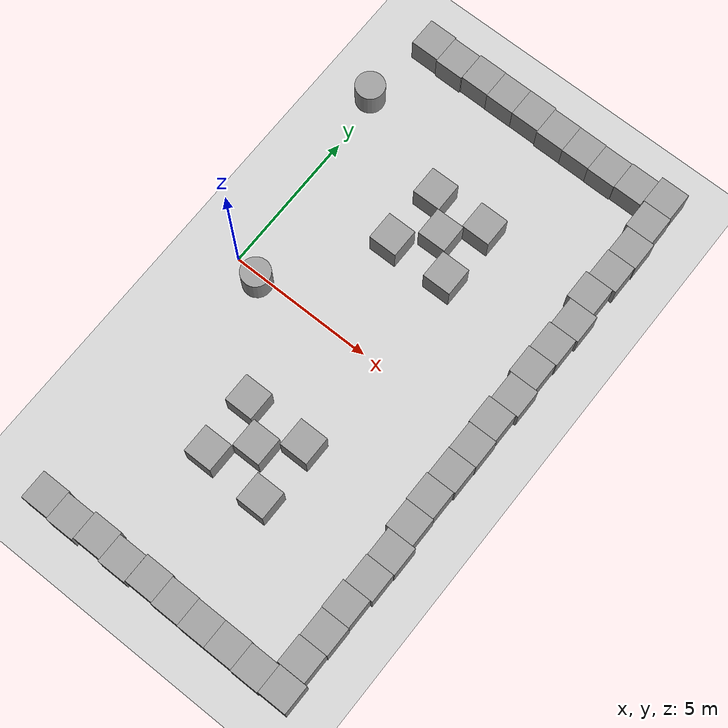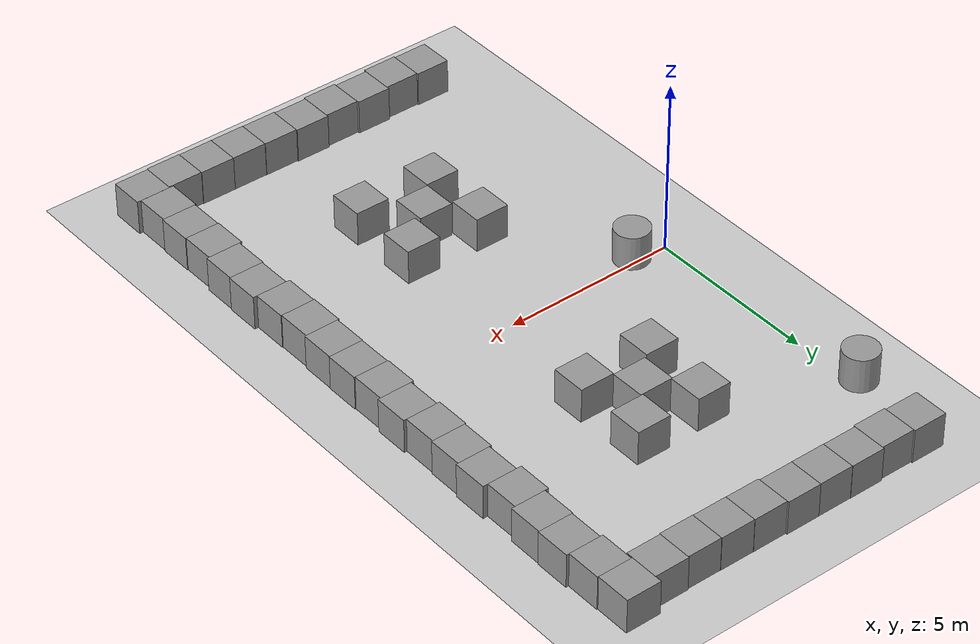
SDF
<sdf version="1.7">
 <world name="default">
  <model name="ground_plane">
   <static>1</static>
   <link name="link">
    <collision name="collision">
     <geometry><plane><normal>0 0 1</normal><size>100 100</size></plane></geometry>
     <surface>
      <contact><collide_bitmask>65535</collide_bitmask></contact>
      <friction><ode><mu>100</mu><mu2>50</mu2></ode></friction>
     </surface>
    </collision>
    <visual name="visual">
     <cast_shadows>0</cast_shadows>
     <geometry><plane><normal>0 0 1</normal><size>100 100</size></plane></geometry>
     <material>
      <script><uri>file://media/materials/scripts/gazebo.material</uri><name>Gazebo/Grey</name></script>
     </material>
    </visual>
   </link>
  </model>
  <model name="unit_box_17">
   <pose>0.392104 9.43689 0.499995 -1e-05 -0 -0.002647</pose>
   <link name="link">
    <inertial>
     <mass>1</mass>
     <inertia>
      <ixx>0.166667</ixx>
      <ixy>0</ixy>
      <ixz>0</ixz>
      <iyy>0.166667</iyy>
      <iyz>0</iyz>
      <izz>0.166667</izz>
     </inertia>
    </inertial>
    <collision name="collision"><geometry><box><size>1 1 1</size></box></geometry></collision>
    <visual name="visual">
     <geometry><box><size>1 1 1</size></box></geometry>
     <material>
      <script><name>Gazebo/Grey</name><uri>file://media/materials/scripts/gazebo.material</uri></script>
     </material>
    </visual>
   </link>
  </model>
  <model name="unit_box_18">
   <pose>1.39199 9.39251 0.499995 1e-05 -0 -0.00264</pose>
   <link name="link">
    <inertial>
     <mass>1</mass>
     <inertia>
      <ixx>0.166667</ixx>
      <ixy>0</ixy>
      <ixz>0</ixz>
      <iyy>0.166667</iyy>
      <iyz>0</iyz>
      <izz>0.166667</izz>
     </inertia>
    </inertial>
    <collision name="collision"><geometry><box><size>1 1 1</size></box></geometry></collision>
    <visual name="visual">
     <geometry><box><size>1 1 1</size></box></geometry>
     <material>
      <script><name>Gazebo/Grey</name><uri>file://media/materials/scripts/gazebo.material</uri></script>
     </material>
    </visual>
   </link>
  </model>
  <model name="unit_box_19">
   <pose>2.39259 9.43873 0.499995 -1e-05 -0 -0.001596</pose>
   <link name="link">
    <inertial>
     <mass>1</mass>
     <inertia>
      <ixx>0.166667</ixx>
      <ixy>0</ixy>
      <ixz>0</ixz>
      <iyy>0.166667</iyy>
      <iyz>0</iyz>
      <izz>0.166667</izz>
     </inertia>
    </inertial>
    <collision name="collision"><geometry><box><size>1 1 1</size></box></geometry></collision>
    <visual name="visual">
     <geometry><box><size>1 1 1</size></box></geometry>
     <material>
      <script><name>Gazebo/Grey</name><uri>file://media/materials/scripts/gazebo.material</uri></script>
     </material>
    </visual>
   </link>
  </model>
  <model name="unit_box_20">
   <pose>3.3927 9.42968 0.499995 -1e-05 -0 -0.001365</pose>
   <link name="link">
    <inertial>
     <mass>1</mass>
     <inertia>
      <ixx>0.166667</ixx>
      <ixy>0</ixy>
      <ixz>0</ixz>
      <iyy>0.166667</iyy>
      <iyz>0</iyz>
      <izz>0.166667</izz>
     </inertia>
    </inertial>
    <collision name="collision"><geometry><box><size>1 1 1</size></box></geometry></collision>
    <visual name="visual">
     <geometry><box><size>1 1 1</size></box></geometry>
     <material>
      <script><name>Gazebo/Grey</name><uri>file://media/materials/scripts/gazebo.material</uri></script>
     </material>
    </visual>
   </link>
  </model>
  <model name="unit_box_21">
   <pose>4.39287 9.43126 0.499995 1e-05 -0 -0.001029</pose>
   <link name="link">
    <inertial>
     <mass>1</mass>
     <inertia>
      <ixx>0.166667</ixx>
      <ixy>0</ixy>
      <ixz>0</ixz>
      <iyy>0.166667</iyy>
      <iyz>0</iyz>
      <izz>0.166667</izz>
     </inertia>
    </inertial>
    <collision name="collision"><geometry><box><size>1 1 1</size></box></geometry></collision>
    <visual name="visual">
     <geometry><box><size>1 1 1</size></box></geometry>
     <material>
      <script><name>Gazebo/Grey</name><uri>file://media/materials/scripts/gazebo.material</uri></script>
     </material>
    </visual>
   </link>
  </model>
  <model name="unit_box_22">
   <pose>5.3933 9.3867 0.5 0 0 -7.4e-05</pose>
   <link name="link">
    <inertial>
     <mass>1</mass>
     <inertia>
      <ixx>0.166667</ixx>
      <ixy>0</ixy>
      <ixz>0</ixz>
      <iyy>0.166667</iyy>
      <iyz>0</iyz>
      <izz>0.166667</izz>
     </inertia>
    </inertial>
    <collision name="collision"><geometry><box><size>1 1 1</size></box></geometry></collision>
    <visual name="visual">
     <geometry><box><size>1 1 1</size></box></geometry>
     <material>
      <script><name>Gazebo/Grey</name><uri>file://media/materials/scripts/gazebo.material</uri></script>
     </material>
    </visual>
   </link>
  </model>
  <model name="unit_box_23">
   <pose>6.39336 9.37988 0.499995 1e-05 -0 3.2e-05</pose>
   <link name="link">
    <inertial>
     <mass>1</mass>
     <inertia>
      <ixx>0.166667</ixx>
      <ixy>0</ixy>
      <ixz>0</ixz>
      <iyy>0.166667</iyy>
      <iyz>0</iyz>
      <izz>0.166667</izz>
     </inertia>
    </inertial>
    <collision name="collision"><geometry><box><size>1 1 1</size></box></geometry></collision>
    <visual name="visual">
     <geometry><box><size>1 1 1</size></box></geometry>
     <material>
      <script><name>Gazebo/Grey</name><uri>file://media/materials/scripts/gazebo.material</uri></script>
     </material>
    </visual>
   </link>
  </model>
  <model name="unit_box_24">
   <pose>7.39336 9.36883 0.499995 0 -9e-06 3.5e-05</pose>
   <link name="link">
    <inertial>
     <mass>1</mass>
     <inertia>
      <ixx>0.166667</ixx>
      <ixy>0</ixy>
      <ixz>0</ixz>
      <iyy>0.166667</iyy>
      <iyz>0</iyz>
      <izz>0.166667</izz>
     </inertia>
    </inertial>
    <collision name="collision"><geometry><box><size>1 1 1</size></box></geometry></collision>
    <visual name="visual">
     <geometry><box><size>1 1 1</size></box></geometry>
     <material>
      <script><name>Gazebo/Grey</name><uri>file://media/materials/scripts/gazebo.material</uri></script>
     </material>
    </visual>
   </link>
  </model>
  <model name="unit_box_25">
   <pose>8.39341 9.39466 0.5 0 -0 0.000138</pose>
   <link name="link">
    <inertial>
     <mass>1</mass>
     <inertia>
      <ixx>0.166667</ixx>
      <ixy>0</ixy>
      <ixz>0</ixz>
      <iyy>0.166667</iyy>
      <iyz>0</iyz>
      <izz>0.166667</izz>
     </inertia>
    </inertial>
    <collision name="collision"><geometry><box><size>1 1 1</size></box></geometry></collision>
    <visual name="visual">
     <geometry><box><size>1 1 1</size></box></geometry>
     <material>
      <script><name>Gazebo/Grey</name><uri>file://media/materials/scripts/gazebo.material</uri></script>
     </material>
    </visual>
   </link>
  </model>
  <model name="unit_box_26">
   <pose>9.39342 9.59434 0.5 0 -0 0.000231</pose>
   <link name="link">
    <inertial>
     <mass>1</mass>
     <inertia>
      <ixx>0.166667</ixx>
      <ixy>0</ixy>
      <ixz>0</ixz>
      <iyy>0.166667</iyy>
      <iyz>0</iyz>
      <izz>0.166667</izz>
     </inertia>
    </inertial>
    <collision name="collision"><geometry><box><size>1 1 1</size></box></geometry></collision>
    <visual name="visual">
     <geometry><box><size>1 1 1</size></box></geometry>
     <material>
      <script><name>Gazebo/Grey</name><uri>file://media/materials/scripts/gazebo.material</uri></script>
     </material>
    </visual>
   </link>
  </model>
  <model name="unit_box_27">
   <pose>9.41864 8.59421 0.499995 0 -1e-05 0.000412</pose>
   <link name="link">
    <inertial>
     <mass>1</mass>
     <inertia>
      <ixx>0.166667</ixx>
      <ixy>0</ixy>
      <ixz>0</ixz>
      <iyy>0.166667</iyy>
      <iyz>0</iyz>
      <izz>0.166667</izz>
     </inertia>
    </inertial>
    <collision name="collision"><geometry><box><size>1 1 1</size></box></geometry></collision>
    <visual name="visual">
     <geometry><box><size>1 1 1</size></box></geometry>
     <material>
      <script><name>Gazebo/Grey</name><uri>file://media/materials/scripts/gazebo.material</uri></script>
     </material>
    </visual>
   </link>
  </model>
  <model name="unit_box_28">
   <pose>9.4967 7.59422 0.499995 0 -1e-05 0.000448</pose>
   <link name="link">
    <inertial>
     <mass>1</mass>
     <inertia>
      <ixx>0.166667</ixx>
      <ixy>0</ixy>
      <ixz>0</ixz>
      <iyy>0.166667</iyy>
      <iyz>0</iyz>
      <izz>0.166667</izz>
     </inertia>
    </inertial>
    <collision name="collision"><geometry><box><size>1 1 1</size></box></geometry></collision>
    <visual name="visual">
     <geometry><box><size>1 1 1</size></box></geometry>
     <material>
      <script><name>Gazebo/Grey</name><uri>file://media/materials/scripts/gazebo.material</uri></script>
     </material>
    </visual>
   </link>
  </model>
  <model name="unit_box_29">
   <pose>9.47494 6.5942 0.499995 0 1e-05 0.000465</pose>
   <link name="link">
    <inertial>
     <mass>1</mass>
     <inertia>
      <ixx>0.166667</ixx>
      <ixy>0</ixy>
      <ixz>0</ixz>
      <iyy>0.166667</iyy>
      <iyz>0</iyz>
      <izz>0.166667</izz>
     </inertia>
    </inertial>
    <collision name="collision"><geometry><box><size>1 1 1</size></box></geometry></collision>
    <visual name="visual">
     <geometry><box><size>1 1 1</size></box></geometry>
     <material>
      <script><name>Gazebo/Grey</name><uri>file://media/materials/scripts/gazebo.material</uri></script>
     </material>
    </visual>
   </link>
  </model>
  <model name="unit_box_30">
   <pose>9.3665 5.5939 0.499995 0 1e-05 0.000959</pose>
   <link name="link">
    <inertial>
     <mass>1</mass>
     <inertia>
      <ixx>0.166667</ixx>
      <ixy>0</ixy>
      <ixz>0</ixz>
      <iyy>0.166667</iyy>
      <iyz>0</iyz>
      <izz>0.166667</izz>
     </inertia>
    </inertial>
    <collision name="collision"><geometry><box><size>1 1 1</size></box></geometry></collision>
    <visual name="visual">
     <geometry><box><size>1 1 1</size></box></geometry>
     <material>
      <script><name>Gazebo/Grey</name><uri>file://media/materials/scripts/gazebo.material</uri></script>
     </material>
    </visual>
   </link>
  </model>
  <model name="unit_box_31">
   <pose>9.50773 4.59387 0.5 0 -0 0.001405</pose>
   <link name="link">
    <inertial>
     <mass>1</mass>
     <inertia>
      <ixx>0.166667</ixx>
      <ixy>0</ixy>
      <ixz>0</ixz>
      <iyy>0.166667</iyy>
      <iyz>0</iyz>
      <izz>0.166667</izz>
     </inertia>
    </inertial>
    <collision name="collision"><geometry><box><size>1 1 1</size></box></geometry></collision>
    <visual name="visual">
     <geometry><box><size>1 1 1</size></box></geometry>
     <material>
      <script><name>Gazebo/Grey</name><uri>file://media/materials/scripts/gazebo.material</uri></script>
     </material>
    </visual>
   </link>
  </model>
  <model name="unit_box_32">
   <pose>9.44971 3.59376 0.5 0 -0 0.001459</pose>
   <link name="link">
    <inertial>
     <mass>1</mass>
     <inertia>
      <ixx>0.166667</ixx>
      <ixy>0</ixy>
      <ixz>0</ixz>
      <iyy>0.166667</iyy>
      <iyz>0</iyz>
      <izz>0.166667</izz>
     </inertia>
    </inertial>
    <collision name="collision"><geometry><box><size>1 1 1</size></box></geometry></collision>
    <visual name="visual">
     <geometry><box><size>1 1 1</size></box></geometry>
     <material>
      <script><name>Gazebo/Grey</name><uri>file://media/materials/scripts/gazebo.material</uri></script>
     </material>
    </visual>
   </link>
  </model>
  <model name="unit_box_33">
   <pose>9.41921 2.59371 0.5 0 -0 0.001467</pose>
   <link name="link">
    <inertial>
     <mass>1</mass>
     <inertia>
      <ixx>0.166667</ixx>
      <ixy>0</ixy>
      <ixz>0</ixz>
      <iyy>0.166667</iyy>
      <iyz>0</iyz>
      <izz>0.166667</izz>
     </inertia>
    </inertial>
    <collision name="collision"><geometry><box><size>1 1 1</size></box></geometry></collision>
    <visual name="visual">
     <geometry><box><size>1 1 1</size></box></geometry>
     <material>
      <script><name>Gazebo/Grey</name><uri>file://media/materials/scripts/gazebo.material</uri></script>
     </material>
    </visual>
   </link>
  </model>
  <model name="unit_box_34">
   <pose>9.5007 1.59379 0.499995 0 1e-05 0.001543</pose>
   <link name="link">
    <inertial>
     <mass>1</mass>
     <inertia>
      <ixx>0.166667</ixx>
      <ixy>0</ixy>
      <ixz>0</ixz>
      <iyy>0.166667</iyy>
      <iyz>0</iyz>
      <izz>0.166667</izz>
     </inertia>
    </inertial>
    <collision name="collision"><geometry><box><size>1 1 1</size></box></geometry></collision>
    <visual name="visual">
     <geometry><box><size>1 1 1</size></box></geometry>
     <material>
      <script><name>Gazebo/Grey</name><uri>file://media/materials/scripts/gazebo.material</uri></script>
     </material>
    </visual>
   </link>
  </model>
  <model name="unit_box_35">
   <pose>9.42391 0.593644 0.499995 -1e-05 0 0.001598</pose>
   <link name="link">
    <inertial>
     <mass>1</mass>
     <inertia>
      <ixx>0.166667</ixx>
      <ixy>0</ixy>
      <ixz>0</ixz>
      <iyy>0.166667</iyy>
      <iyz>0</iyz>
      <izz>0.166667</izz>
     </inertia>
    </inertial>
    <collision name="collision"><geometry><box><size>1 1 1</size></box></geometry></collision>
    <visual name="visual">
     <geometry><box><size>1 1 1</size></box></geometry>
     <material>
      <script><name>Gazebo/Grey</name><uri>file://media/materials/scripts/gazebo.material</uri></script>
     </material>
    </visual>
   </link>
  </model>
  <model name="unit_box_36">
   <pose>9.45116 -0.406327 0.5 0 -0 0.001604</pose>
   <link name="link">
    <inertial>
     <mass>1</mass>
     <inertia>
      <ixx>0.166667</ixx>
      <ixy>0</ixy>
      <ixz>0</ixz>
      <iyy>0.166667</iyy>
      <iyz>0</iyz>
      <izz>0.166667</izz>
     </inertia>
    </inertial>
    <collision name="collision"><geometry><box><size>1 1 1</size></box></geometry></collision>
    <visual name="visual">
     <geometry><box><size>1 1 1</size></box></geometry>
     <material>
      <script><name>Gazebo/Grey</name><uri>file://media/materials/scripts/gazebo.material</uri></script>
     </material>
    </visual>
   </link>
  </model>
  <model name="unit_box_37">
   <pose>9.43995 -1.40635 0.499995 0 1e-05 0.00161</pose>
   <link name="link">
    <inertial>
     <mass>1</mass>
     <inertia>
      <ixx>0.166667</ixx>
      <ixy>0</ixy>
      <ixz>0</ixz>
      <iyy>0.166667</iyy>
      <iyz>0</iyz>
      <izz>0.166667</izz>
     </inertia>
    </inertial>
    <collision name="collision"><geometry><box><size>1 1 1</size></box></geometry></collision>
    <visual name="visual">
     <geometry><box><size>1 1 1</size></box></geometry>
     <material>
      <script><name>Gazebo/Grey</name><uri>file://media/materials/scripts/gazebo.material</uri></script>
     </material>
    </visual>
   </link>
  </model>
  <model name="unit_box_38">
   <pose>9.40094 -2.40643 0.499995 0 -1e-05 0.001587</pose>
   <link name="link">
    <inertial>
     <mass>1</mass>
     <inertia>
      <ixx>0.166667</ixx>
      <ixy>0</ixy>
      <ixz>0</ixz>
      <iyy>0.166667</iyy>
      <iyz>0</iyz>
      <izz>0.166667</izz>
     </inertia>
    </inertial>
    <collision name="collision"><geometry><box><size>1 1 1</size></box></geometry></collision>
    <visual name="visual">
     <geometry><box><size>1 1 1</size></box></geometry>
     <material>
      <script><name>Gazebo/Grey</name><uri>file://media/materials/scripts/gazebo.material</uri></script>
     </material>
    </visual>
   </link>
  </model>
  <model name="unit_box_39">
   <pose>9.42291 -3.40641 0.499995 0 -1e-05 0.001577</pose>
   <link name="link">
    <inertial>
     <mass>1</mass>
     <inertia>
      <ixx>0.166667</ixx>
      <ixy>0</ixy>
      <ixz>0</ixz>
      <iyy>0.166667</iyy>
      <iyz>0</iyz>
      <izz>0.166667</izz>
     </inertia>
    </inertial>
    <collision name="collision"><geometry><box><size>1 1 1</size></box></geometry></collision>
    <visual name="visual">
     <geometry><box><size>1 1 1</size></box></geometry>
     <material>
      <script><name>Gazebo/Grey</name><uri>file://media/materials/scripts/gazebo.material</uri></script>
     </material>
    </visual>
   </link>
  </model>
  <model name="unit_box_40">
   <pose>9.53445 -4.40625 0.499995 -0 1e-05 0.001555</pose>
   <link name="link">
    <inertial>
     <mass>1</mass>
     <inertia>
      <ixx>0.166667</ixx>
      <ixy>0</ixy>
      <ixz>0</ixz>
      <iyy>0.166667</iyy>
      <iyz>0</iyz>
      <izz>0.166667</izz>
     </inertia>
    </inertial>
    <collision name="collision"><geometry><box><size>1 1 1</size></box></geometry></collision>
    <visual name="visual">
     <geometry><box><size>1 1 1</size></box></geometry>
     <material>
      <script><name>Gazebo/Grey</name><uri>file://media/materials/scripts/gazebo.material</uri></script>
     </material>
    </visual>
   </link>
  </model>
  <model name="unit_box_41">
   <pose>9.51364 -5.40629 0.499995 0 1e-05 0.001554</pose>
   <link name="link">
    <inertial>
     <mass>1</mass>
     <inertia>
      <ixx>0.166667</ixx>
      <ixy>0</ixy>
      <ixz>0</ixz>
      <iyy>0.166667</iyy>
      <iyz>0</iyz>
      <izz>0.166667</izz>
     </inertia>
    </inertial>
    <collision name="collision"><geometry><box><size>1 1 1</size></box></geometry></collision>
    <visual name="visual">
     <geometry><box><size>1 1 1</size></box></geometry>
     <material>
      <script><name>Gazebo/Grey</name><uri>file://media/materials/scripts/gazebo.material</uri></script>
     </material>
    </visual>
   </link>
  </model>
  <model name="unit_box_42">
   <pose>9.44409 -6.40641 0.499995 -1e-05 -0 0.001525</pose>
   <link name="link">
    <inertial>
     <mass>1</mass>
     <inertia>
      <ixx>0.166667</ixx>
      <ixy>0</ixy>
      <ixz>0</ixz>
      <iyy>0.166667</iyy>
      <iyz>0</iyz>
      <izz>0.166667</izz>
     </inertia>
    </inertial>
    <collision name="collision"><geometry><box><size>1 1 1</size></box></geometry></collision>
    <visual name="visual">
     <geometry><box><size>1 1 1</size></box></geometry>
     <material>
      <script><name>Gazebo/Grey</name><uri>file://media/materials/scripts/gazebo.material</uri></script>
     </material>
    </visual>
   </link>
  </model>
  <model name="unit_box_43">
   <pose>9.46387 -7.4064 0.499995 1e-05 -0 0.001525</pose>
   <link name="link">
    <inertial>
     <mass>1</mass>
     <inertia>
      <ixx>0.166667</ixx>
      <ixy>0</ixy>
      <ixz>0</ixz>
      <iyy>0.166667</iyy>
      <iyz>0</iyz>
      <izz>0.166667</izz>
     </inertia>
    </inertial>
    <collision name="collision"><geometry><box><size>1 1 1</size></box></geometry></collision>
    <visual name="visual">
     <geometry><box><size>1 1 1</size></box></geometry>
     <material>
      <script><name>Gazebo/Grey</name><uri>file://media/materials/scripts/gazebo.material</uri></script>
     </material>
    </visual>
   </link>
  </model>
  <model name="unit_box_44">
   <pose>9.43884 -8.40645 0.499995 -1e-05 -0 0.00148</pose>
   <link name="link">
    <inertial>
     <mass>1</mass>
     <inertia>
      <ixx>0.166667</ixx>
      <ixy>0</ixy>
      <ixz>0</ixz>
      <iyy>0.166667</iyy>
      <iyz>0</iyz>
      <izz>0.166667</izz>
     </inertia>
    </inertial>
    <collision name="collision"><geometry><box><size>1 1 1</size></box></geometry></collision>
    <visual name="visual">
     <geometry><box><size>1 1 1</size></box></geometry>
     <material>
      <script><name>Gazebo/Grey</name><uri>file://media/materials/scripts/gazebo.material</uri></script>
     </material>
    </visual>
   </link>
  </model>
  <model name="unit_box_45">
   <pose>9.54897 -9.40793 0.499995 1e-05 -0 -0.000979</pose>
   <link name="link">
    <inertial>
     <mass>1</mass>
     <inertia>
      <ixx>0.166667</ixx>
      <ixy>0</ixy>
      <ixz>0</ixz>
      <iyy>0.166667</iyy>
      <iyz>0</iyz>
      <izz>0.166667</izz>
     </inertia>
    </inertial>
    <collision name="collision"><geometry><box><size>1 1 1</size></box></geometry></collision>
    <visual name="visual">
     <geometry><box><size>1 1 1</size></box></geometry>
     <material>
      <script><name>Gazebo/Grey</name><uri>file://media/materials/scripts/gazebo.material</uri></script>
     </material>
    </visual>
   </link>
  </model>
  <model name="unit_box_46">
   <pose>8.54892 -9.43225 0.499995 1e-05 0 -0.000931</pose>
   <link name="link">
    <inertial>
     <mass>1</mass>
     <inertia>
      <ixx>0.166667</ixx>
      <ixy>0</ixy>
      <ixz>0</ixz>
      <iyy>0.166667</iyy>
      <iyz>0</iyz>
      <izz>0.166667</izz>
     </inertia>
    </inertial>
    <collision name="collision"><geometry><box><size>1 1 1</size></box></geometry></collision>
    <visual name="visual">
     <geometry><box><size>1 1 1</size></box></geometry>
     <material>
      <script><name>Gazebo/Grey</name><uri>file://media/materials/scripts/gazebo.material</uri></script>
     </material>
    </visual>
   </link>
  </model>
  <model name="unit_box_47">
   <pose>7.54892 -9.41411 0.499995 -1e-05 -0 -0.000917</pose>
   <link name="link">
    <inertial>
     <mass>1</mass>
     <inertia>
      <ixx>0.166667</ixx>
      <ixy>0</ixy>
      <ixz>0</ixz>
      <iyy>0.166667</iyy>
      <iyz>0</iyz>
      <izz>0.166667</izz>
     </inertia>
    </inertial>
    <collision name="collision"><geometry><box><size>1 1 1</size></box></geometry></collision>
    <visual name="visual">
     <geometry><box><size>1 1 1</size></box></geometry>
     <material>
      <script><name>Gazebo/Grey</name><uri>file://media/materials/scripts/gazebo.material</uri></script>
     </material>
    </visual>
   </link>
  </model>
  <model name="unit_box_48">
   <pose>6.5489 -9.41348 0.499995 1e-05 0 -0.00088</pose>
   <link name="link">
    <inertial>
     <mass>1</mass>
     <inertia>
      <ixx>0.166667</ixx>
      <ixy>0</ixy>
      <ixz>0</ixz>
      <iyy>0.166667</iyy>
      <iyz>0</iyz>
      <izz>0.166667</izz>
     </inertia>
    </inertial>
    <collision name="collision"><geometry><box><size>1 1 1</size></box></geometry></collision>
    <visual name="visual">
     <geometry><box><size>1 1 1</size></box></geometry>
     <material>
      <script><name>Gazebo/Grey</name><uri>file://media/materials/scripts/gazebo.material</uri></script>
     </material>
    </visual>
   </link>
  </model>
  <model name="unit_box_49">
   <pose>5.54888 -9.4 0.5 0 -0 -0.000815</pose>
   <link name="link">
    <inertial>
     <mass>1</mass>
     <inertia>
      <ixx>0.166667</ixx>
      <ixy>0</ixy>
      <ixz>0</ixz>
      <iyy>0.166667</iyy>
      <iyz>0</iyz>
      <izz>0.166667</izz>
     </inertia>
    </inertial>
    <collision name="collision"><geometry><box><size>1 1 1</size></box></geometry></collision>
    <visual name="visual">
     <geometry><box><size>1 1 1</size></box></geometry>
     <material>
      <script><name>Gazebo/Grey</name><uri>file://media/materials/scripts/gazebo.material</uri></script>
     </material>
    </visual>
   </link>
  </model>
  <model name="unit_box_50">
   <pose>4.5489 -9.36806 0.499995 0 1e-05 -0.000805</pose>
   <link name="link">
    <inertial>
     <mass>1</mass>
     <inertia>
      <ixx>0.166667</ixx>
      <ixy>0</ixy>
      <ixz>0</ixz>
      <iyy>0.166667</iyy>
      <iyz>0</iyz>
      <izz>0.166667</izz>
     </inertia>
    </inertial>
    <collision name="collision"><geometry><box><size>1 1 1</size></box></geometry></collision>
    <visual name="visual">
     <geometry><box><size>1 1 1</size></box></geometry>
     <material>
      <script><name>Gazebo/Grey</name><uri>file://media/materials/scripts/gazebo.material</uri></script>
     </material>
    </visual>
   </link>
  </model>
  <model name="unit_box_51">
   <pose>3.54802 -9.42109 0.5 0 -0 0.001047</pose>
   <link name="link">
    <inertial>
     <mass>1</mass>
     <inertia>
      <ixx>0.166667</ixx>
      <ixy>0</ixy>
      <ixz>0</ixz>
      <iyy>0.166667</iyy>
      <iyz>0</iyz>
      <izz>0.166667</izz>
     </inertia>
    </inertial>
    <collision name="collision"><geometry><box><size>1 1 1</size></box></geometry></collision>
    <visual name="visual">
     <geometry><box><size>1 1 1</size></box></geometry>
     <material>
      <script><name>Gazebo/Grey</name><uri>file://media/materials/scripts/gazebo.material</uri></script>
     </material>
    </visual>
   </link>
  </model>
  <model name="unit_box_52">
   <pose>2.54792 -9.36159 0.499995 0 9e-06 0.001139</pose>
   <link name="link">
    <inertial>
     <mass>1</mass>
     <inertia>
      <ixx>0.166667</ixx>
      <ixy>0</ixy>
      <ixz>0</ixz>
      <iyy>0.166667</iyy>
      <iyz>0</iyz>
      <izz>0.166667</izz>
     </inertia>
    </inertial>
    <collision name="collision"><geometry><box><size>1 1 1</size></box></geometry></collision>
    <visual name="visual">
     <geometry><box><size>1 1 1</size></box></geometry>
     <material>
      <script><name>Gazebo/Grey</name><uri>file://media/materials/scripts/gazebo.material</uri></script>
     </material>
    </visual>
   </link>
  </model>
  <model name="unit_box_53">
   <pose>1.54791 -9.43491 0.499995 -0 -1e-05 0.001327</pose>
   <link name="link">
    <inertial>
     <mass>1</mass>
     <inertia>
      <ixx>0.166667</ixx>
      <ixy>0</ixy>
      <ixz>0</ixz>
      <iyy>0.166667</iyy>
      <iyz>0</iyz>
      <izz>0.166667</izz>
     </inertia>
    </inertial>
    <collision name="collision"><geometry><box><size>1 1 1</size></box></geometry></collision>
    <visual name="visual">
     <geometry><box><size>1 1 1</size></box></geometry>
     <material>
      <script><name>Gazebo/Grey</name><uri>file://media/materials/scripts/gazebo.material</uri></script>
     </material>
    </visual>
   </link>
  </model>
  <model name="unit_box_54">
   <pose>0.547853 -9.3964 0.499995 -0 -1e-05 0.001328</pose>
   <link name="link">
    <inertial>
     <mass>1</mass>
     <inertia>
      <ixx>0.166667</ixx>
      <ixy>0</ixy>
      <ixz>0</ixz>
      <iyy>0.166667</iyy>
      <iyz>0</iyz>
      <izz>0.166667</izz>
     </inertia>
    </inertial>
    <collision name="collision"><geometry><box><size>1 1 1</size></box></geometry></collision>
    <visual name="visual">
     <geometry><box><size>1 1 1</size></box></geometry>
     <material>
      <script><name>Gazebo/Grey</name><uri>file://media/materials/scripts/gazebo.material</uri></script>
     </material>
    </visual>
   </link>
  </model>
  <model name="unit_box_75">
   <pose>5.48936 5.41059 0.499995 1e-05 -0 0</pose>
   <link name="link">
    <inertial>
     <mass>1</mass>
     <inertia>
      <ixx>0.166667</ixx>
      <ixy>0</ixy>
      <ixz>0</ixz>
      <iyy>0.166667</iyy>
      <iyz>0</iyz>
      <izz>0.166667</izz>
     </inertia>
    </inertial>
    <collision name="collision"><geometry><box><size>1 1 1</size></box></geometry></collision>
    <visual name="visual">
     <geometry><box><size>1 1 1</size></box></geometry>
     <material>
      <script><name>Gazebo/Grey</name><uri>file://media/materials/scripts/gazebo.material</uri></script>
     </material>
    </visual>
   </link>
  </model>
  <model name="unit_box_76">
   <pose>4.5538 4.39664 0.499995 0 -1e-05 0.008359</pose>
   <link name="link">
    <inertial>
     <mass>1</mass>
     <inertia>
      <ixx>0.166667</ixx>
      <ixy>0</ixy>
      <ixz>0</ixz>
      <iyy>0.166667</iyy>
      <iyz>0</iyz>
      <izz>0.166667</izz>
     </inertia>
    </inertial>
    <collision name="collision"><geometry><box><size>1 1 1</size></box></geometry></collision>
    <visual name="visual">
     <geometry><box><size>1 1 1</size></box></geometry>
     <material>
      <script><name>Gazebo/Grey</name><uri>file://media/materials/scripts/gazebo.material</uri></script>
     </material>
    </visual>
   </link>
  </model>
  <model name="unit_box_77">
   <pose>3.46499 3.34706 0.499995 1e-05 -0 0</pose>
   <link name="link">
    <inertial>
     <mass>1</mass>
     <inertia>
      <ixx>0.166667</ixx>
      <ixy>0</ixy>
      <ixz>0</ixz>
      <iyy>0.166667</iyy>
      <iyz>0</iyz>
      <izz>0.166667</izz>
     </inertia>
    </inertial>
    <collision name="collision"><geometry><box><size>1 1 1</size></box></geometry></collision>
    <visual name="visual">
     <geometry><box><size>1 1 1</size></box></geometry>
     <material>
      <script><name>Gazebo/Grey</name><uri>file://media/materials/scripts/gazebo.material</uri></script>
     </material>
    </visual>
   </link>
  </model>
  <model name="unit_box_78">
   <pose>3.58887 5.38904 0.499995 -1e-05 -0 0.007569</pose>
   <link name="link">
    <inertial>
     <mass>1</mass>
     <inertia>
      <ixx>0.166667</ixx>
      <ixy>0</ixy>
      <ixz>0</ixz>
      <iyy>0.166667</iyy>
      <iyz>0</iyz>
      <izz>0.166667</izz>
     </inertia>
    </inertial>
    <collision name="collision"><geometry><box><size>1 1 1</size></box></geometry></collision>
    <visual name="visual">
     <geometry><box><size>1 1 1</size></box></geometry>
     <material>
      <script><name>Gazebo/Grey</name><uri>file://media/materials/scripts/gazebo.material</uri></script>
     </material>
    </visual>
   </link>
  </model>
  <model name="unit_box_79">
   <pose>5.53599 3.38184 0.499995 1e-05 -0 0</pose>
   <link name="link">
    <inertial>
     <mass>1</mass>
     <inertia>
      <ixx>0.166667</ixx>
      <ixy>0</ixy>
      <ixz>0</ixz>
      <iyy>0.166667</iyy>
      <iyz>0</iyz>
      <izz>0.166667</izz>
     </inertia>
    </inertial>
    <collision name="collision"><geometry><box><size>1 1 1</size></box></geometry></collision>
    <visual name="visual">
     <geometry><box><size>1 1 1</size></box></geometry>
     <material>
      <script><name>Gazebo/Grey</name><uri>file://media/materials/scripts/gazebo.material</uri></script>
     </material>
    </visual>
   </link>
  </model>
  <model name="unit_box_80">
   <pose>5.50505 -5.51121 0.499995 0 -1e-05 0</pose>
   <link name="link">
    <inertial>
     <mass>1</mass>
     <inertia>
      <ixx>0.166667</ixx>
      <ixy>0</ixy>
      <ixz>0</ixz>
      <iyy>0.166667</iyy>
      <iyz>0</iyz>
      <izz>0.166667</izz>
     </inertia>
    </inertial>
    <collision name="collision"><geometry><box><size>1 1 1</size></box></geometry></collision>
    <visual name="visual">
     <geometry><box><size>1 1 1</size></box></geometry>
     <material>
      <script><name>Gazebo/Grey</name><uri>file://media/materials/scripts/gazebo.material</uri></script>
     </material>
    </visual>
   </link>
  </model>
  <model name="unit_box_81">
   <pose>5.47175 -3.44771 0.499995 1e-05 -0 0</pose>
   <link name="link">
    <inertial>
     <mass>1</mass>
     <inertia>
      <ixx>0.166667</ixx>
      <ixy>0</ixy>
      <ixz>0</ixz>
      <iyy>0.166667</iyy>
      <iyz>0</iyz>
      <izz>0.166667</izz>
     </inertia>
    </inertial>
    <collision name="collision"><geometry><box><size>1 1 1</size></box></geometry></collision>
    <visual name="visual">
     <geometry><box><size>1 1 1</size></box></geometry>
     <material>
      <script><name>Gazebo/Grey</name><uri>file://media/materials/scripts/gazebo.material</uri></script>
     </material>
    </visual>
   </link>
  </model>
  <model name="unit_box_82">
   <pose>4.3833 -4.34188 0.499995 0 -1e-05 0</pose>
   <link name="link">
    <inertial>
     <mass>1</mass>
     <inertia>
      <ixx>0.166667</ixx>
      <ixy>0</ixy>
      <ixz>0</ixz>
      <iyy>0.166667</iyy>
      <iyz>0</iyz>
      <izz>0.166667</izz>
     </inertia>
    </inertial>
    <collision name="collision"><geometry><box><size>1 1 1</size></box></geometry></collision>
    <visual name="visual">
     <geometry><box><size>1 1 1</size></box></geometry>
     <material>
      <script><name>Gazebo/Grey</name><uri>file://media/materials/scripts/gazebo.material</uri></script>
     </material>
    </visual>
   </link>
  </model>
  <model name="unit_box_83">
   <pose>3.31609 -3.40462 0.499995 1e-05 -0 0</pose>
   <link name="link">
    <inertial>
     <mass>1</mass>
     <inertia>
      <ixx>0.166667</ixx>
      <ixy>0</ixy>
      <ixz>0</ixz>
      <iyy>0.166667</iyy>
      <iyz>0</iyz>
      <izz>0.166667</izz>
     </inertia>
    </inertial>
    <collision name="collision"><geometry><box><size>1 1 1</size></box></geometry></collision>
    <visual name="visual">
     <geometry><box><size>1 1 1</size></box></geometry>
     <material>
      <script><name>Gazebo/Grey</name><uri>file://media/materials/scripts/gazebo.material</uri></script>
     </material>
    </visual>
   </link>
  </model>
  <model name="unit_box_84">
   <pose>3.37393 -5.3645 0.499995 0 -1e-05 0</pose>
   <link name="link">
    <inertial>
     <mass>1</mass>
     <inertia>
      <ixx>0.166667</ixx>
      <ixy>0</ixy>
      <ixz>0</ixz>
      <iyy>0.166667</iyy>
      <iyz>0</iyz>
      <izz>0.166667</izz>
     </inertia>
    </inertial>
    <collision name="collision"><geometry><box><size>1 1 1</size></box></geometry></collision>
    <visual name="visual">
     <geometry><box><size>1 1 1</size></box></geometry>
     <material>
      <script><name>Gazebo/Grey</name><uri>file://media/materials/scripts/gazebo.material</uri></script>
     </material>
    </visual>
   </link>
  </model>
  <model name="unit_cylinder">
   <pose>-0.226745 6.90653 0.499993 -3e-06 -4e-06 -0</pose>
   <link name="link">
    <inertial>
     <mass>1</mass>
     <inertia><ixx>0.145833</ixx><ixy>0</ixy><ixz>0</ixz><iyy>0.145833</iyy><iyz>0</iyz><izz>0.125</izz></inertia>
    </inertial>
    <collision name="collision">
     <geometry><cylinder><radius>0.5</radius><length>1</length></cylinder></geometry>
    </collision>
    <visual name="visual">
     <geometry><cylinder><radius>0.5</radius><length>1</length></cylinder></geometry>
     <material>
      <script><name>Gazebo/Grey</name><uri>file://media/materials/scripts/gazebo.material</uri></script>
     </material>
    </visual>
   </link>
  </model>
  <model name="unit_cylinder_0">
   <pose>0.946636 -0.227638 0.499997 3e-06 4e-06 -0</pose>
   <link name="link">
    <inertial>
     <mass>1</mass>
     <inertia><ixx>0.145833</ixx><ixy>0</ixy><ixz>0</ixz><iyy>0.145833</iyy><iyz>0</iyz><izz>0.125</izz></inertia>
    </inertial>
    <collision name="collision">
     <geometry><cylinder><radius>0.5</radius><length>1</length></cylinder></geometry>
    </collision>
    <visual name="visual">
     <geometry><cylinder><radius>0.5</radius><length>1</length></cylinder></geometry>
     <material>
      <script><name>Gazebo/Grey</name><uri>file://media/materials/scripts/gazebo.material</uri></script>
     </material>
    </visual>
   </link>
  </model>
 </world>
</sdf>
